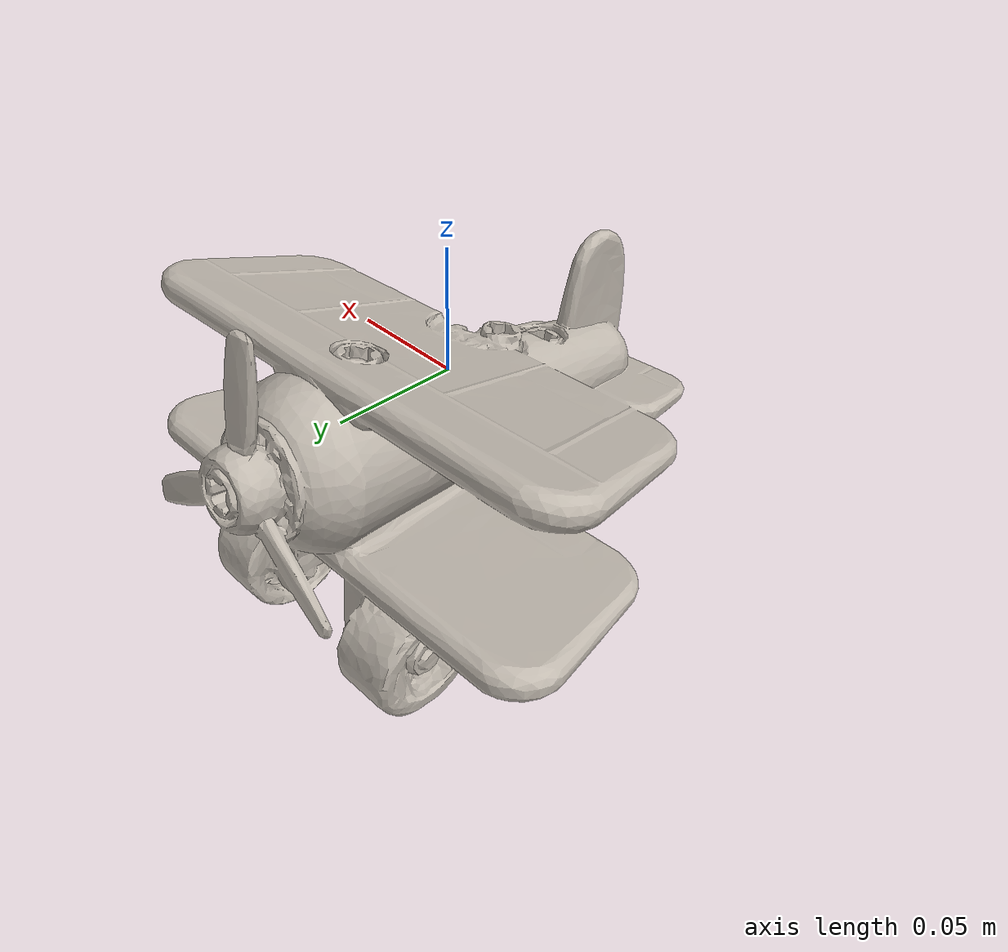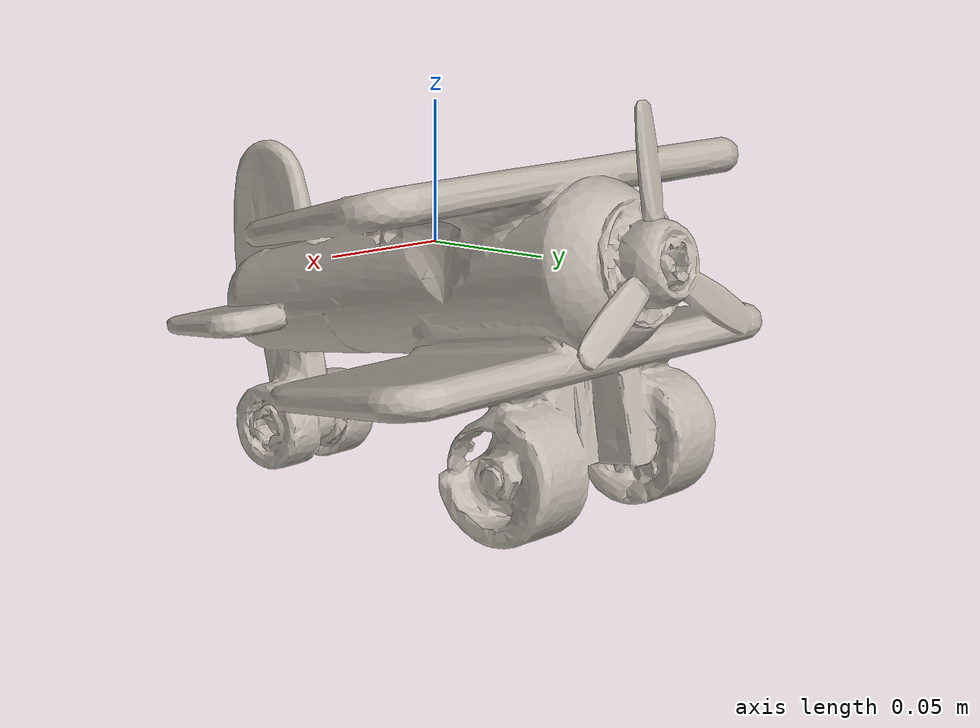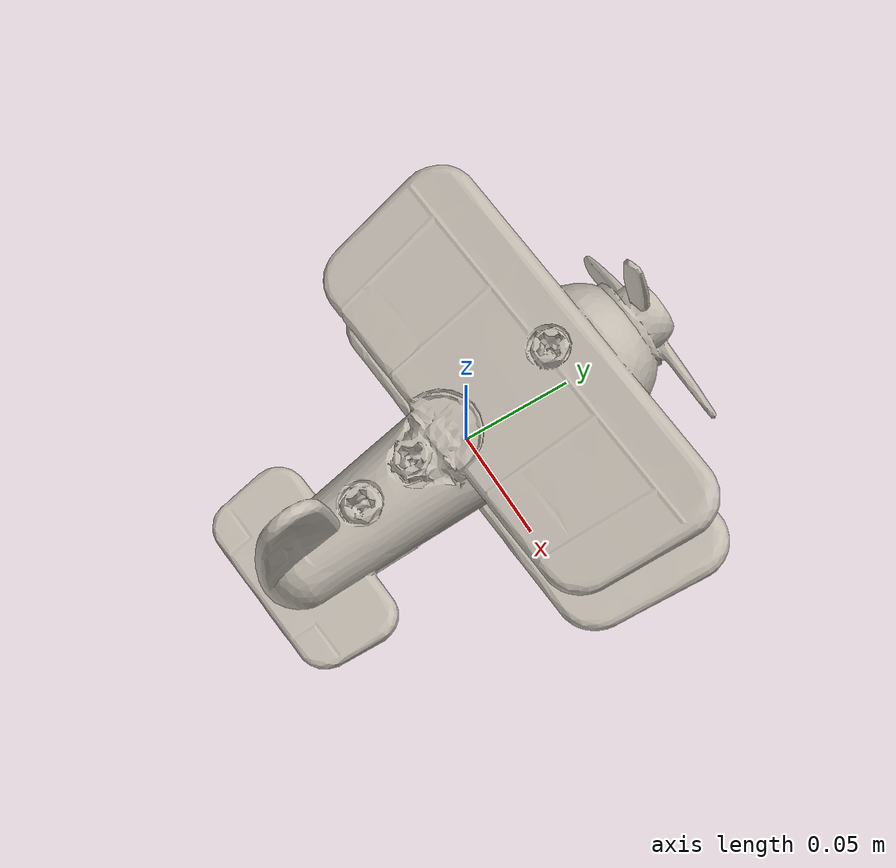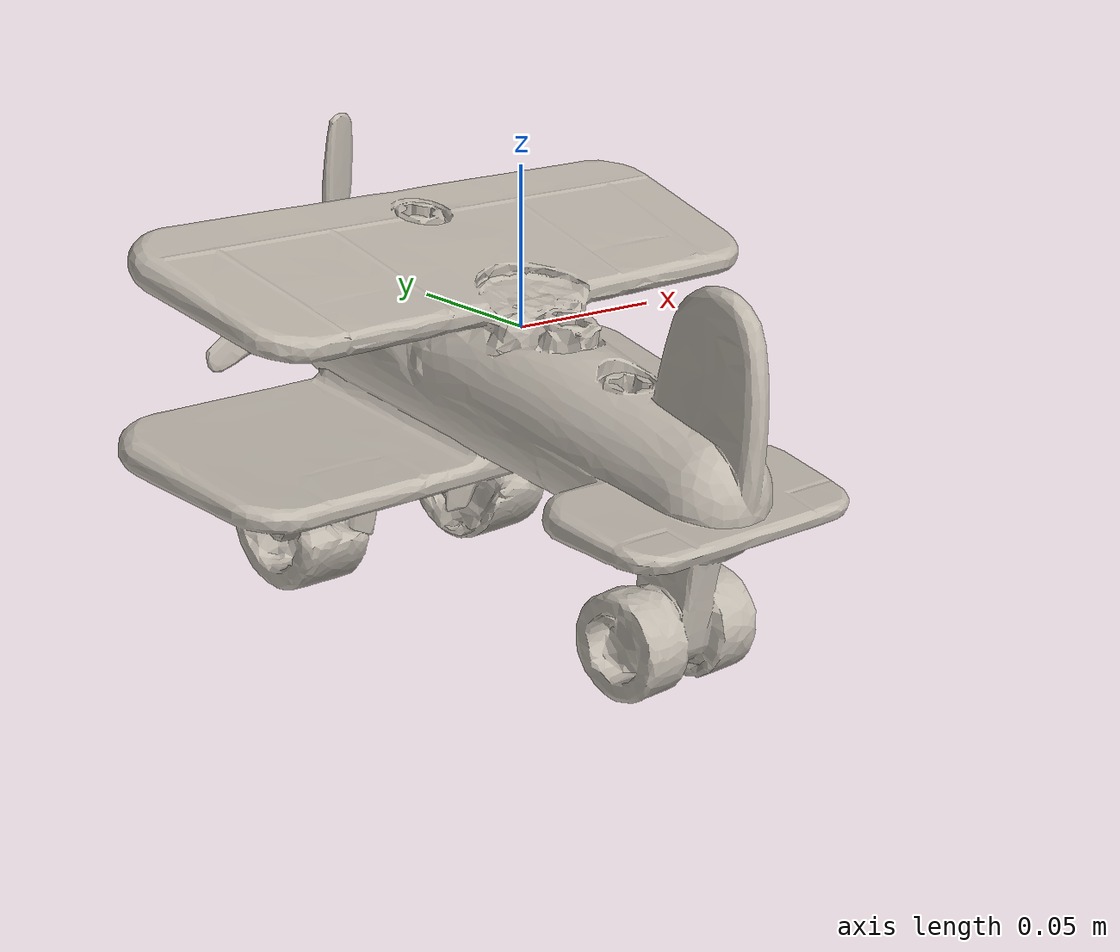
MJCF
<mujoco model="bread">
  <asset>
    <mesh file="nontextured.stl" name="obj_mesh" scale="0.8 0.8 0.8"/>
    <texture file="../../../../../textures/bread.png" type="2d" name="tex-bread" />
    <material name="bread" reflectance="0.7" texrepeat="15 15" texture="tex-bread" texuniform="true"/>
  </asset>
  <worldbody>
    <body>
      <body name="collision">
        <geom pos="-0.03358599999999999 -0.006103999999999998 -0.09096699999999999" mesh="obj_mesh" type="mesh" solimp="0.998 0.998 0.001" solref="0.001 1" density="50" friction="0.95 0.3 0.1"  material="bread" group="1" condim="4"/>
      </body>
      <body name="visual">
        <geom pos="-0.03358599999999999 -0.006103999999999998 -0.09096699999999999" mesh="obj_mesh" type="mesh" material="bread"  conaffinity="0" contype="0"  group="0" mass="0.0001"/>
        <geom pos="-0.03358599999999999 -0.006103999999999998 -0.09096699999999999" mesh="obj_mesh" type="mesh" material="bread"  conaffinity="0" contype="0"  group="1" mass="0.0001"/>
      </body>
      <site rgba="0 0 0 0" size="0.005" pos="0 0 -0.091719" name="bottom_site"/>
      <site rgba="0 0 0 0" size="0.005" pos="0 0 0.091719" name="top_site"/>
      <site rgba="0 0 0 0" size="0.005" pos="0.12759199999999998 0.131466 0.091719" name="horizontal_radius_site"/>
    </body>
  </worldbody>
</mujoco>
